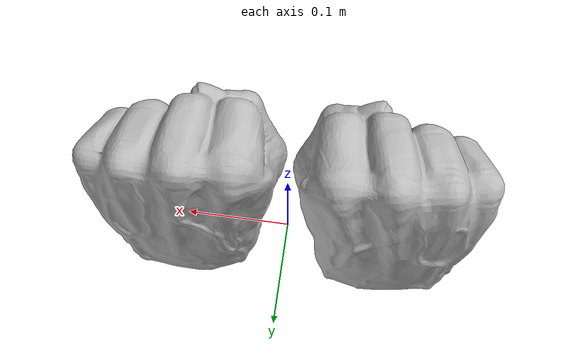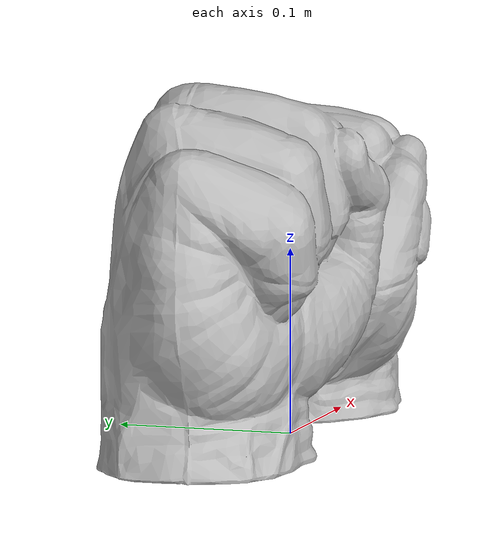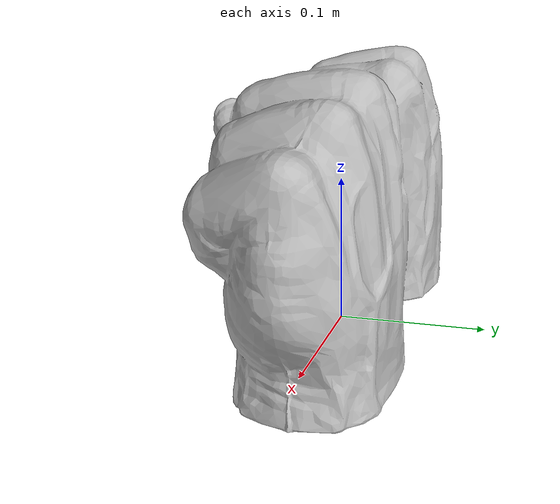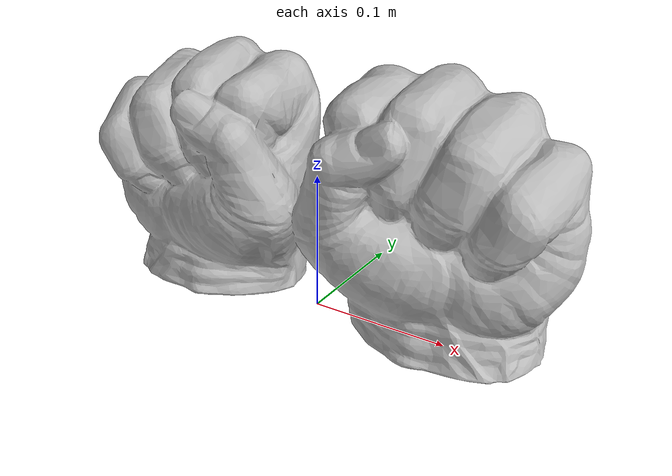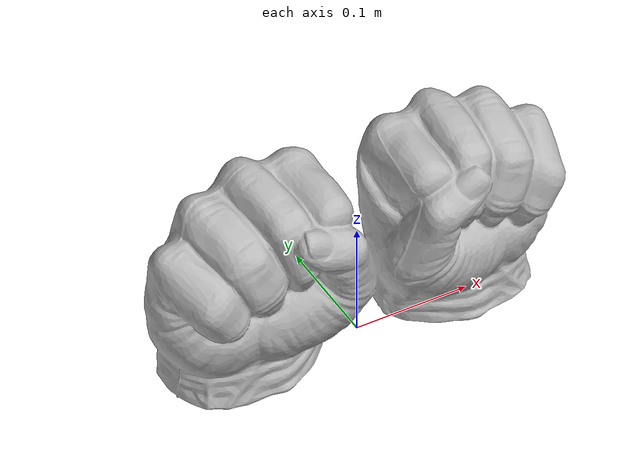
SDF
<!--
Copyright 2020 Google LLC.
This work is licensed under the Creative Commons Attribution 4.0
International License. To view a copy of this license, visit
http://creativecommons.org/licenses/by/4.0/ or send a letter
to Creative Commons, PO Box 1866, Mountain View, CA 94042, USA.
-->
<?xml version="1.0" ?>
<sdf version="1.6">
  <model name="Avengers_Gamma_Green_Smash_Fists">
    <link name="link_0">
      <visual name="visual">
        <geometry>
          <mesh>
            <uri>meshes/model.obj</uri>
          </mesh>
        </geometry>
      </visual>
      <collision name="collision_0">
        <geometry>
          <mesh>
            <uri>meshes/model.obj</uri>
          </mesh>
        </geometry>
      </collision>
    </link>
  </model>
</sdf>
